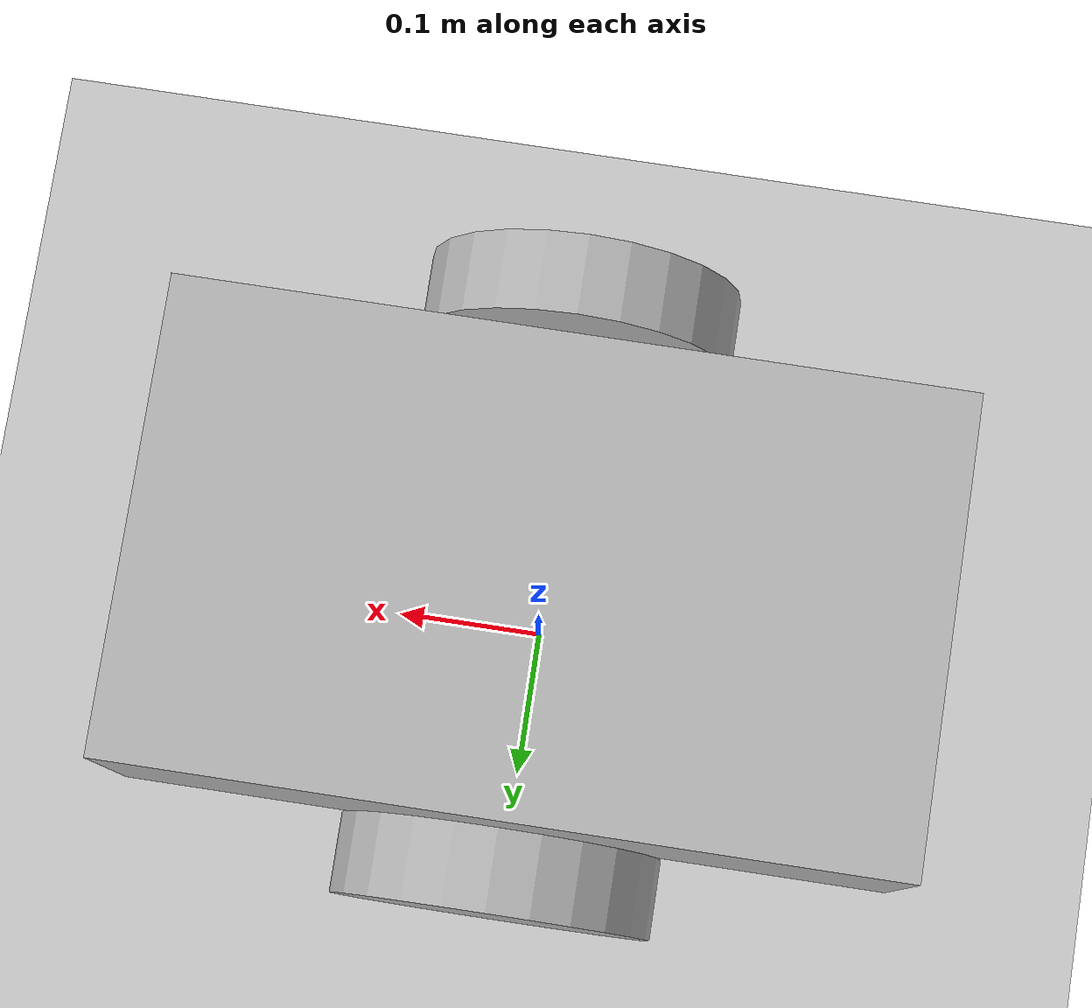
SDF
<?xml version="1.0"?>
<sdf version="1.8">
  <world name="teleop_course">
    <physics name="1ms" type="ignored">
      <max_step_size>0.001</max_step_size>
      <real_time_factor>1.0</real_time_factor>
    </physics>
    <plugin filename="gz-sim-physics-system" name="gz::sim::systems::Physics"/>
    <plugin filename="gz-sim-scene-broadcaster-system" name="gz::sim::systems::SceneBroadcaster"/>
    <model name="ground">
      <static>true</static>
      <link name="ground_link">
        <collision name="c"><geometry><plane><normal>0 0 1</normal></plane></geometry></collision>
        <visual name="v"><geometry><plane><normal>0 0 1</normal><size>100 100</size></plane></geometry></visual>
      </link>
    </model>
    <model name="rover">
      <pose>0 0 0.2 0 0 0</pose>
      <link name="chassis">
        <inertial><mass>5.0</mass><inertia><ixx>0.1</ixx><iyy>0.1</iyy><izz>0.1</izz></inertia></inertial>
        <collision name="c"><geometry><box><size>0.5 0.3 0.15</size></box></geometry></collision>
        <visual name="v"><geometry><box><size>0.5 0.3 0.15</size></box></geometry></visual>
      </link>
      <link name="left_wheel">
        <pose>0 0.18 0 -1.5707 0 0</pose>
        <inertial><mass>0.5</mass><inertia><ixx>0.01</ixx><iyy>0.01</iyy><izz>0.01</izz></inertia></inertial>
        <collision name="c"><geometry><cylinder><radius>0.1</radius><length>0.05</length></cylinder></geometry></collision>
        <visual name="v"><geometry><cylinder><radius>0.1</radius><length>0.05</length></cylinder></geometry></visual>
      </link>
      <link name="right_wheel">
        <pose>0 -0.18 0 -1.5707 0 0</pose>
        <inertial><mass>0.5</mass><inertia><ixx>0.01</ixx><iyy>0.01</iyy><izz>0.01</izz></inertia></inertial>
        <collision name="c"><geometry><cylinder><radius>0.1</radius><length>0.05</length></cylinder></geometry></collision>
        <visual name="v"><geometry><cylinder><radius>0.1</radius><length>0.05</length></cylinder></geometry></visual>
      </link>
      <joint name="left_wheel_joint" type="revolute">
        <parent>chassis</parent><child>left_wheel</child>
        <axis><xyz>0 0 1</xyz></axis>
      </joint>
      <joint name="right_wheel_joint" type="revolute">
        <parent>chassis</parent><child>right_wheel</child>
        <axis><xyz>0 0 1</xyz></axis>
      </joint>
      <plugin filename="gz-sim-diff-drive-system" name="gz::sim::systems::DiffDrive">
        <left_joint>left_wheel_joint</left_joint>
        <right_joint>right_wheel_joint</right_joint>
        <wheel_separation>0.36</wheel_separation>
        <wheel_radius>0.1</wheel_radius>
        <topic>/model/rover/cmd_vel</topic>
        <odom_topic>/model/rover/odometry</odom_topic>
      </plugin>
    </model>
  </world>
</sdf>
